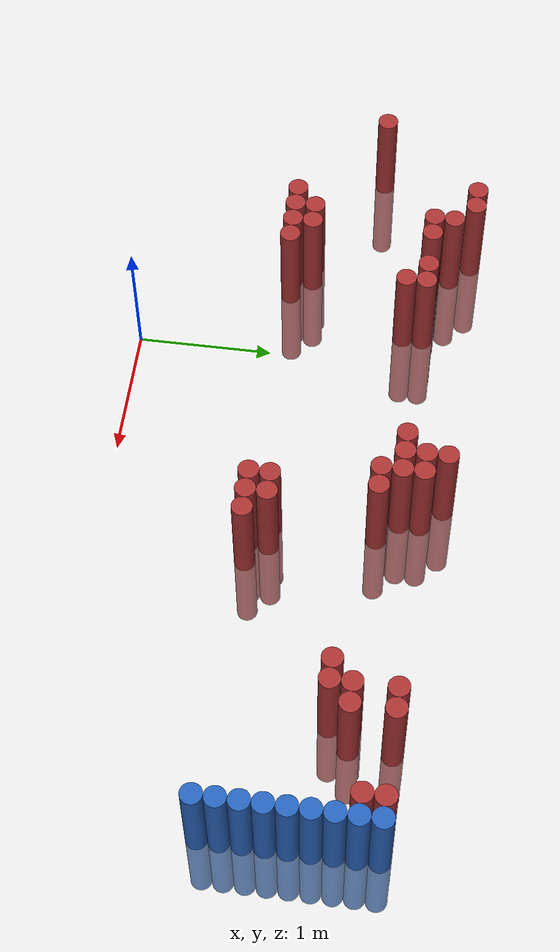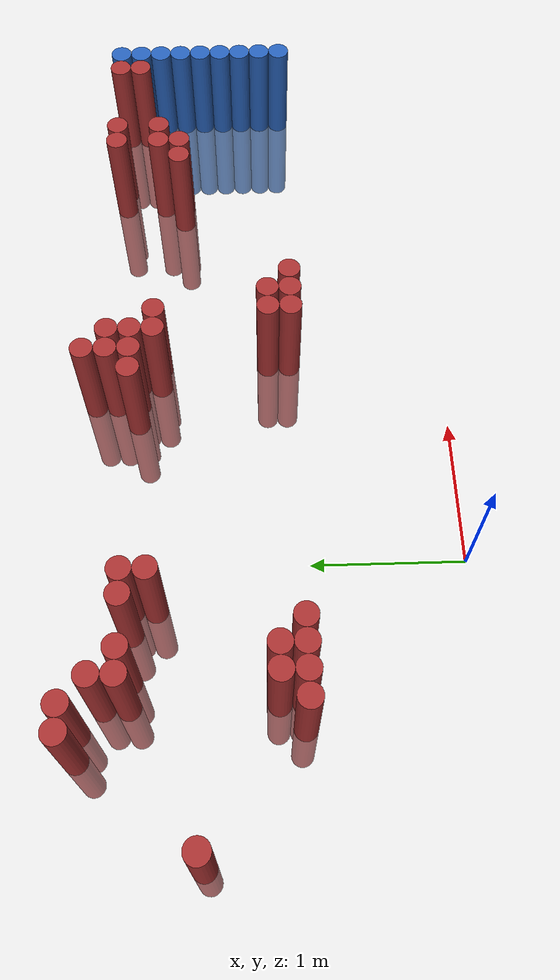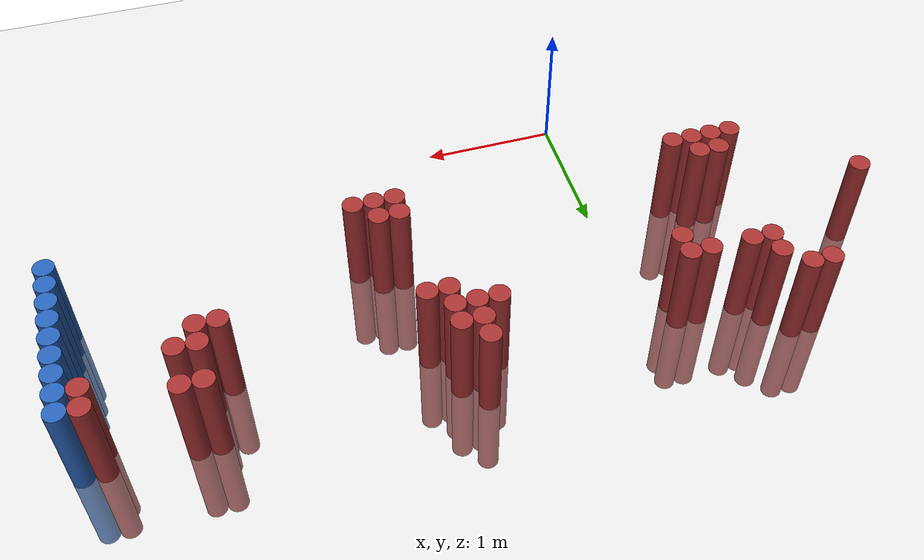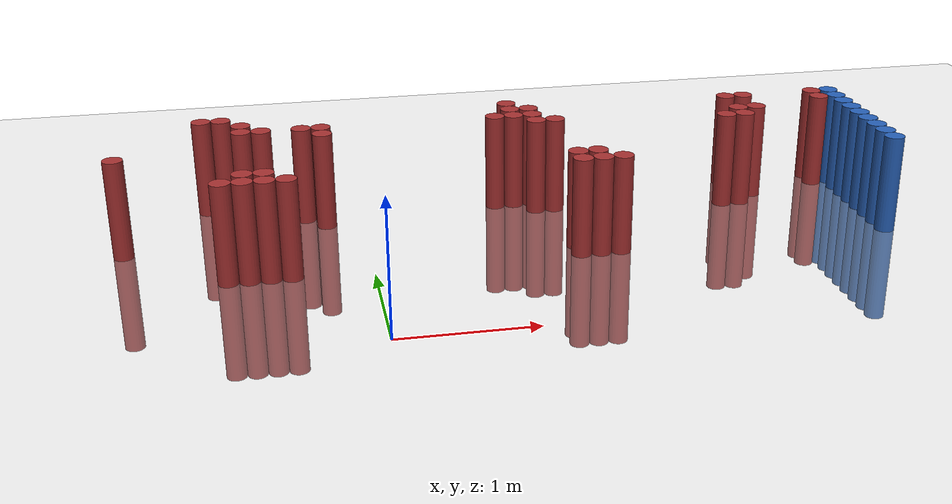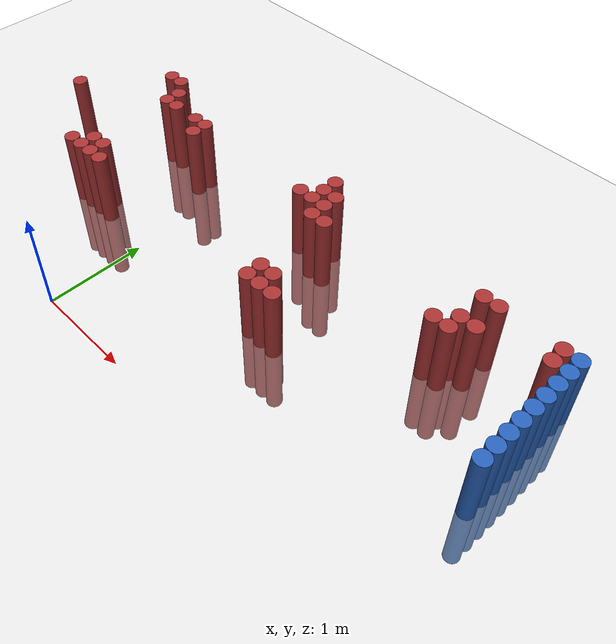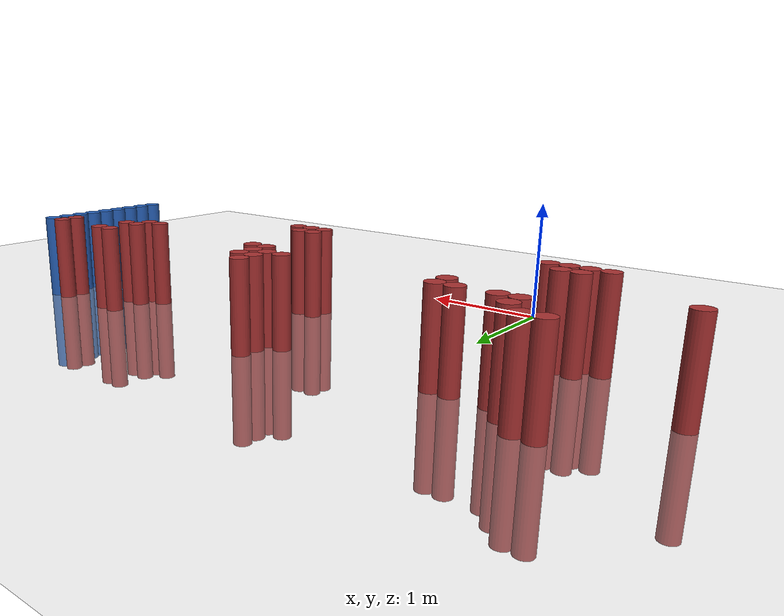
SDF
<sdf version="1.6">
 <world name="default">
  <model name="ground_plane">
   <static>1</static>
   <link name="link">
    <collision name="collision">
     <geometry><plane><normal>0 0 1</normal><size>100 100</size></plane></geometry>
     <surface><friction><ode><mu>100</mu><mu2>50</mu2></ode></friction></surface>
    </collision>
    <visual name="visual">
     <cast_shadows>0</cast_shadows>
     <geometry><plane><normal>0 0 1</normal><size>100 100</size></plane></geometry>
     <material>
      <script><uri>file://media/materials/scripts/gazebo.material</uri><name>Gazebo/Grey</name></script>
     </material>
    </visual>
   </link>
  </model>
  <model name="unit_cylinder_128">
   <static>1</static>
   <pose>3.925000 1.075000 0.000000 0.000000 0.000000 0.000000</pose>
   <link name="link">
    <inertial>
     <mass>1</mass>
     <inertia><ixx>0.145833</ixx><ixy>0</ixy><ixz>0</ixz><iyy>0.145833</iyy><iyz>0</iyz><izz>0.125</izz></inertia>
    </inertial>
    <collision name="collision">
     <geometry><cylinder><radius>0.075000</radius><length>1.5</length></cylinder></geometry>
    </collision>
    <visual name="visual">
     <geometry><cylinder><radius>0.075000</radius><length>1.5</length></cylinder></geometry>
     <material>
      <ambient>0.152000 0.379000 0.720000 1</ambient>
      <diffuse>0.152000 0.379000 0.720000 1</diffuse>
     </material>
     <material>
      <script><name>Gazebo/Grey</name><uri>file://media/materials/scripts/gazebo.material</uri></script>
     </material>
    </visual>
   </link>
  </model>
  <model name="unit_cylinder_130">
   <static>1</static>
   <pose>3.925000 1.225000 0.000000 0.000000 0.000000 0.000000</pose>
   <link name="link">
    <inertial>
     <mass>1</mass>
     <inertia><ixx>0.145833</ixx><ixy>0</ixy><ixz>0</ixz><iyy>0.145833</iyy><iyz>0</iyz><izz>0.125</izz></inertia>
    </inertial>
    <collision name="collision">
     <geometry><cylinder><radius>0.075000</radius><length>1.5</length></cylinder></geometry>
    </collision>
    <visual name="visual">
     <geometry><cylinder><radius>0.075000</radius><length>1.5</length></cylinder></geometry>
     <material>
      <ambient>0.152000 0.379000 0.720000 1</ambient>
      <diffuse>0.152000 0.379000 0.720000 1</diffuse>
     </material>
     <material>
      <script><name>Gazebo/Grey</name><uri>file://media/materials/scripts/gazebo.material</uri></script>
     </material>
    </visual>
   </link>
  </model>
  <model name="unit_cylinder_132">
   <static>1</static>
   <pose>3.925000 1.375000 0.000000 0.000000 0.000000 0.000000</pose>
   <link name="link">
    <inertial>
     <mass>1</mass>
     <inertia><ixx>0.145833</ixx><ixy>0</ixy><ixz>0</ixz><iyy>0.145833</iyy><iyz>0</iyz><izz>0.125</izz></inertia>
    </inertial>
    <collision name="collision">
     <geometry><cylinder><radius>0.075000</radius><length>1.5</length></cylinder></geometry>
    </collision>
    <visual name="visual">
     <geometry><cylinder><radius>0.075000</radius><length>1.5</length></cylinder></geometry>
     <material>
      <ambient>0.152000 0.379000 0.720000 1</ambient>
      <diffuse>0.152000 0.379000 0.720000 1</diffuse>
     </material>
     <material>
      <script><name>Gazebo/Grey</name><uri>file://media/materials/scripts/gazebo.material</uri></script>
     </material>
    </visual>
   </link>
  </model>
  <model name="unit_cylinder_134">
   <static>1</static>
   <pose>3.925000 1.525000 0.000000 0.000000 0.000000 0.000000</pose>
   <link name="link">
    <inertial>
     <mass>1</mass>
     <inertia><ixx>0.145833</ixx><ixy>0</ixy><ixz>0</ixz><iyy>0.145833</iyy><iyz>0</iyz><izz>0.125</izz></inertia>
    </inertial>
    <collision name="collision">
     <geometry><cylinder><radius>0.075000</radius><length>1.5</length></cylinder></geometry>
    </collision>
    <visual name="visual">
     <geometry><cylinder><radius>0.075000</radius><length>1.5</length></cylinder></geometry>
     <material>
      <ambient>0.152000 0.379000 0.720000 1</ambient>
      <diffuse>0.152000 0.379000 0.720000 1</diffuse>
     </material>
     <material>
      <script><name>Gazebo/Grey</name><uri>file://media/materials/scripts/gazebo.material</uri></script>
     </material>
    </visual>
   </link>
  </model>
  <model name="unit_cylinder_136">
   <static>1</static>
   <pose>3.925000 1.675000 0.000000 0.000000 0.000000 0.000000</pose>
   <link name="link">
    <inertial>
     <mass>1</mass>
     <inertia><ixx>0.145833</ixx><ixy>0</ixy><ixz>0</ixz><iyy>0.145833</iyy><iyz>0</iyz><izz>0.125</izz></inertia>
    </inertial>
    <collision name="collision">
     <geometry><cylinder><radius>0.075000</radius><length>1.5</length></cylinder></geometry>
    </collision>
    <visual name="visual">
     <geometry><cylinder><radius>0.075000</radius><length>1.5</length></cylinder></geometry>
     <material>
      <ambient>0.152000 0.379000 0.720000 1</ambient>
      <diffuse>0.152000 0.379000 0.720000 1</diffuse>
     </material>
     <material>
      <script><name>Gazebo/Grey</name><uri>file://media/materials/scripts/gazebo.material</uri></script>
     </material>
    </visual>
   </link>
  </model>
  <model name="unit_cylinder_138">
   <static>1</static>
   <pose>3.925000 1.825000 0.000000 0.000000 0.000000 0.000000</pose>
   <link name="link">
    <inertial>
     <mass>1</mass>
     <inertia><ixx>0.145833</ixx><ixy>0</ixy><ixz>0</ixz><iyy>0.145833</iyy><iyz>0</iyz><izz>0.125</izz></inertia>
    </inertial>
    <collision name="collision">
     <geometry><cylinder><radius>0.075000</radius><length>1.5</length></cylinder></geometry>
    </collision>
    <visual name="visual">
     <geometry><cylinder><radius>0.075000</radius><length>1.5</length></cylinder></geometry>
     <material>
      <ambient>0.152000 0.379000 0.720000 1</ambient>
      <diffuse>0.152000 0.379000 0.720000 1</diffuse>
     </material>
     <material>
      <script><name>Gazebo/Grey</name><uri>file://media/materials/scripts/gazebo.material</uri></script>
     </material>
    </visual>
   </link>
  </model>
  <model name="unit_cylinder_140">
   <static>1</static>
   <pose>3.925000 1.975000 0.000000 0.000000 0.000000 0.000000</pose>
   <link name="link">
    <inertial>
     <mass>1</mass>
     <inertia><ixx>0.145833</ixx><ixy>0</ixy><ixz>0</ixz><iyy>0.145833</iyy><iyz>0</iyz><izz>0.125</izz></inertia>
    </inertial>
    <collision name="collision">
     <geometry><cylinder><radius>0.075000</radius><length>1.5</length></cylinder></geometry>
    </collision>
    <visual name="visual">
     <geometry><cylinder><radius>0.075000</radius><length>1.5</length></cylinder></geometry>
     <material>
      <ambient>0.152000 0.379000 0.720000 1</ambient>
      <diffuse>0.152000 0.379000 0.720000 1</diffuse>
     </material>
     <material>
      <script><name>Gazebo/Grey</name><uri>file://media/materials/scripts/gazebo.material</uri></script>
     </material>
    </visual>
   </link>
  </model>
  <model name="unit_cylinder_142">
   <static>1</static>
   <pose>3.925000 2.125000 0.000000 0.000000 0.000000 0.000000</pose>
   <link name="link">
    <inertial>
     <mass>1</mass>
     <inertia><ixx>0.145833</ixx><ixy>0</ixy><ixz>0</ixz><iyy>0.145833</iyy><iyz>0</iyz><izz>0.125</izz></inertia>
    </inertial>
    <collision name="collision">
     <geometry><cylinder><radius>0.075000</radius><length>1.5</length></cylinder></geometry>
    </collision>
    <visual name="visual">
     <geometry><cylinder><radius>0.075000</radius><length>1.5</length></cylinder></geometry>
     <material>
      <ambient>0.152000 0.379000 0.720000 1</ambient>
      <diffuse>0.152000 0.379000 0.720000 1</diffuse>
     </material>
     <material>
      <script><name>Gazebo/Grey</name><uri>file://media/materials/scripts/gazebo.material</uri></script>
     </material>
    </visual>
   </link>
  </model>
  <model name="unit_cylinder_144">
   <static>1</static>
   <pose>3.925000 2.275000 0.000000 0.000000 0.000000 0.000000</pose>
   <link name="link">
    <inertial>
     <mass>1</mass>
     <inertia><ixx>0.145833</ixx><ixy>0</ixy><ixz>0</ixz><iyy>0.145833</iyy><iyz>0</iyz><izz>0.125</izz></inertia>
    </inertial>
    <collision name="collision">
     <geometry><cylinder><radius>0.075000</radius><length>1.5</length></cylinder></geometry>
    </collision>
    <visual name="visual">
     <geometry><cylinder><radius>0.075000</radius><length>1.5</length></cylinder></geometry>
     <material>
      <ambient>0.152000 0.379000 0.720000 1</ambient>
      <diffuse>0.152000 0.379000 0.720000 1</diffuse>
     </material>
     <material>
      <script><name>Gazebo/Grey</name><uri>file://media/materials/scripts/gazebo.material</uri></script>
     </material>
    </visual>
   </link>
  </model>
  <model name="unit_cylinder_323">
   <static>1</static>
   <pose>-1.775000 1.675000 0.000000 0.000000 0.000000 0.000000</pose>
   <link name="link">
    <inertial>
     <mass>1</mass>
     <inertia><ixx>0.145833</ixx><ixy>0</ixy><ixz>0</ixz><iyy>0.145833</iyy><iyz>0</iyz><izz>0.125</izz></inertia>
    </inertial>
    <collision name="collision">
     <geometry><cylinder><radius>0.075000</radius><length>1.5</length></cylinder></geometry>
    </collision>
    <visual name="visual">
     <geometry><cylinder><radius>0.075000</radius><length>1.5</length></cylinder></geometry>
     <material>
      <ambient>0.648000 0.192000 0.192000 1</ambient>
      <diffuse>0.648000 0.192000 0.192000 1</diffuse>
     </material>
     <material>
      <script><name>Gazebo/Grey</name><uri>file://media/materials/scripts/gazebo.material</uri></script>
     </material>
    </visual>
   </link>
  </model>
  <model name="unit_cylinder_337">
   <static>1</static>
   <pose>-1.175000 2.425000 0.000000 0.000000 0.000000 0.000000</pose>
   <link name="link">
    <inertial>
     <mass>1</mass>
     <inertia><ixx>0.145833</ixx><ixy>0</ixy><ixz>0</ixz><iyy>0.145833</iyy><iyz>0</iyz><izz>0.125</izz></inertia>
    </inertial>
    <collision name="collision">
     <geometry><cylinder><radius>0.075000</radius><length>1.5</length></cylinder></geometry>
    </collision>
    <visual name="visual">
     <geometry><cylinder><radius>0.075000</radius><length>1.5</length></cylinder></geometry>
     <material>
      <ambient>0.648000 0.192000 0.192000 1</ambient>
      <diffuse>0.648000 0.192000 0.192000 1</diffuse>
     </material>
     <material>
      <script><name>Gazebo/Grey</name><uri>file://media/materials/scripts/gazebo.material</uri></script>
     </material>
    </visual>
   </link>
  </model>
  <model name="unit_cylinder_348">
   <static>1</static>
   <pose>-1.025000 1.075000 0.000000 0.000000 0.000000 0.000000</pose>
   <link name="link">
    <inertial>
     <mass>1</mass>
     <inertia><ixx>0.145833</ixx><ixy>0</ixy><ixz>0</ixz><iyy>0.145833</iyy><iyz>0</iyz><izz>0.125</izz></inertia>
    </inertial>
    <collision name="collision">
     <geometry><cylinder><radius>0.075000</radius><length>1.5</length></cylinder></geometry>
    </collision>
    <visual name="visual">
     <geometry><cylinder><radius>0.075000</radius><length>1.5</length></cylinder></geometry>
     <material>
      <ambient>0.648000 0.192000 0.192000 1</ambient>
      <diffuse>0.648000 0.192000 0.192000 1</diffuse>
     </material>
     <material>
      <script><name>Gazebo/Grey</name><uri>file://media/materials/scripts/gazebo.material</uri></script>
     </material>
    </visual>
   </link>
  </model>
  <model name="unit_cylinder_349">
   <static>1</static>
   <pose>-1.025000 2.425000 0.000000 0.000000 0.000000 0.000000</pose>
   <link name="link">
    <inertial>
     <mass>1</mass>
     <inertia><ixx>0.145833</ixx><ixy>0</ixy><ixz>0</ixz><iyy>0.145833</iyy><iyz>0</iyz><izz>0.125</izz></inertia>
    </inertial>
    <collision name="collision">
     <geometry><cylinder><radius>0.075000</radius><length>1.5</length></cylinder></geometry>
    </collision>
    <visual name="visual">
     <geometry><cylinder><radius>0.075000</radius><length>1.5</length></cylinder></geometry>
     <material>
      <ambient>0.648000 0.192000 0.192000 1</ambient>
      <diffuse>0.648000 0.192000 0.192000 1</diffuse>
     </material>
     <material>
      <script><name>Gazebo/Grey</name><uri>file://media/materials/scripts/gazebo.material</uri></script>
     </material>
    </visual>
   </link>
  </model>
  <model name="unit_cylinder_362">
   <static>1</static>
   <pose>-0.875000 1.075000 0.000000 0.000000 0.000000 0.000000</pose>
   <link name="link">
    <inertial>
     <mass>1</mass>
     <inertia><ixx>0.145833</ixx><ixy>0</ixy><ixz>0</ixz><iyy>0.145833</iyy><iyz>0</iyz><izz>0.125</izz></inertia>
    </inertial>
    <collision name="collision">
     <geometry><cylinder><radius>0.075000</radius><length>1.5</length></cylinder></geometry>
    </collision>
    <visual name="visual">
     <geometry><cylinder><radius>0.075000</radius><length>1.5</length></cylinder></geometry>
     <material>
      <ambient>0.648000 0.192000 0.192000 1</ambient>
      <diffuse>0.648000 0.192000 0.192000 1</diffuse>
     </material>
     <material>
      <script><name>Gazebo/Grey</name><uri>file://media/materials/scripts/gazebo.material</uri></script>
     </material>
    </visual>
   </link>
  </model>
  <model name="unit_cylinder_363">
   <static>1</static>
   <pose>-0.875000 1.225000 0.000000 0.000000 0.000000 0.000000</pose>
   <link name="link">
    <inertial>
     <mass>1</mass>
     <inertia><ixx>0.145833</ixx><ixy>0</ixy><ixz>0</ixz><iyy>0.145833</iyy><iyz>0</iyz><izz>0.125</izz></inertia>
    </inertial>
    <collision name="collision">
     <geometry><cylinder><radius>0.075000</radius><length>1.5</length></cylinder></geometry>
    </collision>
    <visual name="visual">
     <geometry><cylinder><radius>0.075000</radius><length>1.5</length></cylinder></geometry>
     <material>
      <ambient>0.648000 0.192000 0.192000 1</ambient>
      <diffuse>0.648000 0.192000 0.192000 1</diffuse>
     </material>
     <material>
      <script><name>Gazebo/Grey</name><uri>file://media/materials/scripts/gazebo.material</uri></script>
     </material>
    </visual>
   </link>
  </model>
  <model name="unit_cylinder_364">
   <static>1</static>
   <pose>-0.875000 2.125000 0.000000 0.000000 0.000000 0.000000</pose>
   <link name="link">
    <inertial>
     <mass>1</mass>
     <inertia><ixx>0.145833</ixx><ixy>0</ixy><ixz>0</ixz><iyy>0.145833</iyy><iyz>0</iyz><izz>0.125</izz></inertia>
    </inertial>
    <collision name="collision">
     <geometry><cylinder><radius>0.075000</radius><length>1.5</length></cylinder></geometry>
    </collision>
    <visual name="visual">
     <geometry><cylinder><radius>0.075000</radius><length>1.5</length></cylinder></geometry>
     <material>
      <ambient>0.648000 0.192000 0.192000 1</ambient>
      <diffuse>0.648000 0.192000 0.192000 1</diffuse>
     </material>
     <material>
      <script><name>Gazebo/Grey</name><uri>file://media/materials/scripts/gazebo.material</uri></script>
     </material>
    </visual>
   </link>
  </model>
  <model name="unit_cylinder_365">
   <static>1</static>
   <pose>-0.875000 2.275000 0.000000 0.000000 0.000000 0.000000</pose>
   <link name="link">
    <inertial>
     <mass>1</mass>
     <inertia><ixx>0.145833</ixx><ixy>0</ixy><ixz>0</ixz><iyy>0.145833</iyy><iyz>0</iyz><izz>0.125</izz></inertia>
    </inertial>
    <collision name="collision">
     <geometry><cylinder><radius>0.075000</radius><length>1.5</length></cylinder></geometry>
    </collision>
    <visual name="visual">
     <geometry><cylinder><radius>0.075000</radius><length>1.5</length></cylinder></geometry>
     <material>
      <ambient>0.648000 0.192000 0.192000 1</ambient>
      <diffuse>0.648000 0.192000 0.192000 1</diffuse>
     </material>
     <material>
      <script><name>Gazebo/Grey</name><uri>file://media/materials/scripts/gazebo.material</uri></script>
     </material>
    </visual>
   </link>
  </model>
  <model name="unit_cylinder_372">
   <static>1</static>
   <pose>-0.725000 1.075000 0.000000 0.000000 0.000000 0.000000</pose>
   <link name="link">
    <inertial>
     <mass>1</mass>
     <inertia><ixx>0.145833</ixx><ixy>0</ixy><ixz>0</ixz><iyy>0.145833</iyy><iyz>0</iyz><izz>0.125</izz></inertia>
    </inertial>
    <collision name="collision">
     <geometry><cylinder><radius>0.075000</radius><length>1.5</length></cylinder></geometry>
    </collision>
    <visual name="visual">
     <geometry><cylinder><radius>0.075000</radius><length>1.5</length></cylinder></geometry>
     <material>
      <ambient>0.648000 0.192000 0.192000 1</ambient>
      <diffuse>0.648000 0.192000 0.192000 1</diffuse>
     </material>
     <material>
      <script><name>Gazebo/Grey</name><uri>file://media/materials/scripts/gazebo.material</uri></script>
     </material>
    </visual>
   </link>
  </model>
  <model name="unit_cylinder_373">
   <static>1</static>
   <pose>-0.725000 1.225000 0.000000 0.000000 0.000000 0.000000</pose>
   <link name="link">
    <inertial>
     <mass>1</mass>
     <inertia><ixx>0.145833</ixx><ixy>0</ixy><ixz>0</ixz><iyy>0.145833</iyy><iyz>0</iyz><izz>0.125</izz></inertia>
    </inertial>
    <collision name="collision">
     <geometry><cylinder><radius>0.075000</radius><length>1.5</length></cylinder></geometry>
    </collision>
    <visual name="visual">
     <geometry><cylinder><radius>0.075000</radius><length>1.5</length></cylinder></geometry>
     <material>
      <ambient>0.648000 0.192000 0.192000 1</ambient>
      <diffuse>0.648000 0.192000 0.192000 1</diffuse>
     </material>
     <material>
      <script><name>Gazebo/Grey</name><uri>file://media/materials/scripts/gazebo.material</uri></script>
     </material>
    </visual>
   </link>
  </model>
  <model name="unit_cylinder_374">
   <static>1</static>
   <pose>-0.725000 2.125000 0.000000 0.000000 0.000000 0.000000</pose>
   <link name="link">
    <inertial>
     <mass>1</mass>
     <inertia><ixx>0.145833</ixx><ixy>0</ixy><ixz>0</ixz><iyy>0.145833</iyy><iyz>0</iyz><izz>0.125</izz></inertia>
    </inertial>
    <collision name="collision">
     <geometry><cylinder><radius>0.075000</radius><length>1.5</length></cylinder></geometry>
    </collision>
    <visual name="visual">
     <geometry><cylinder><radius>0.075000</radius><length>1.5</length></cylinder></geometry>
     <material>
      <ambient>0.648000 0.192000 0.192000 1</ambient>
      <diffuse>0.648000 0.192000 0.192000 1</diffuse>
     </material>
     <material>
      <script><name>Gazebo/Grey</name><uri>file://media/materials/scripts/gazebo.material</uri></script>
     </material>
    </visual>
   </link>
  </model>
  <model name="unit_cylinder_379">
   <static>1</static>
   <pose>-0.575000 1.075000 0.000000 0.000000 0.000000 0.000000</pose>
   <link name="link">
    <inertial>
     <mass>1</mass>
     <inertia><ixx>0.145833</ixx><ixy>0</ixy><ixz>0</ixz><iyy>0.145833</iyy><iyz>0</iyz><izz>0.125</izz></inertia>
    </inertial>
    <collision name="collision">
     <geometry><cylinder><radius>0.075000</radius><length>1.5</length></cylinder></geometry>
    </collision>
    <visual name="visual">
     <geometry><cylinder><radius>0.075000</radius><length>1.5</length></cylinder></geometry>
     <material>
      <ambient>0.648000 0.192000 0.192000 1</ambient>
      <diffuse>0.648000 0.192000 0.192000 1</diffuse>
     </material>
     <material>
      <script><name>Gazebo/Grey</name><uri>file://media/materials/scripts/gazebo.material</uri></script>
     </material>
    </visual>
   </link>
  </model>
  <model name="unit_cylinder_385">
   <static>1</static>
   <pose>-0.425000 2.125000 0.000000 0.000000 0.000000 0.000000</pose>
   <link name="link">
    <inertial>
     <mass>1</mass>
     <inertia><ixx>0.145833</ixx><ixy>0</ixy><ixz>0</ixz><iyy>0.145833</iyy><iyz>0</iyz><izz>0.125</izz></inertia>
    </inertial>
    <collision name="collision">
     <geometry><cylinder><radius>0.075000</radius><length>1.5</length></cylinder></geometry>
    </collision>
    <visual name="visual">
     <geometry><cylinder><radius>0.075000</radius><length>1.5</length></cylinder></geometry>
     <material>
      <ambient>0.648000 0.192000 0.192000 1</ambient>
      <diffuse>0.648000 0.192000 0.192000 1</diffuse>
     </material>
     <material>
      <script><name>Gazebo/Grey</name><uri>file://media/materials/scripts/gazebo.material</uri></script>
     </material>
    </visual>
   </link>
  </model>
  <model name="unit_cylinder_389">
   <static>1</static>
   <pose>-0.275000 1.975000 0.000000 0.000000 0.000000 0.000000</pose>
   <link name="link">
    <inertial>
     <mass>1</mass>
     <inertia><ixx>0.145833</ixx><ixy>0</ixy><ixz>0</ixz><iyy>0.145833</iyy><iyz>0</iyz><izz>0.125</izz></inertia>
    </inertial>
    <collision name="collision">
     <geometry><cylinder><radius>0.075000</radius><length>1.5</length></cylinder></geometry>
    </collision>
    <visual name="visual">
     <geometry><cylinder><radius>0.075000</radius><length>1.5</length></cylinder></geometry>
     <material>
      <ambient>0.648000 0.192000 0.192000 1</ambient>
      <diffuse>0.648000 0.192000 0.192000 1</diffuse>
     </material>
     <material>
      <script><name>Gazebo/Grey</name><uri>file://media/materials/scripts/gazebo.material</uri></script>
     </material>
    </visual>
   </link>
  </model>
  <model name="unit_cylinder_390">
   <static>1</static>
   <pose>-0.275000 2.125000 0.000000 0.000000 0.000000 0.000000</pose>
   <link name="link">
    <inertial>
     <mass>1</mass>
     <inertia><ixx>0.145833</ixx><ixy>0</ixy><ixz>0</ixz><iyy>0.145833</iyy><iyz>0</iyz><izz>0.125</izz></inertia>
    </inertial>
    <collision name="collision">
     <geometry><cylinder><radius>0.075000</radius><length>1.5</length></cylinder></geometry>
    </collision>
    <visual name="visual">
     <geometry><cylinder><radius>0.075000</radius><length>1.5</length></cylinder></geometry>
     <material>
      <ambient>0.648000 0.192000 0.192000 1</ambient>
      <diffuse>0.648000 0.192000 0.192000 1</diffuse>
     </material>
     <material>
      <script><name>Gazebo/Grey</name><uri>file://media/materials/scripts/gazebo.material</uri></script>
     </material>
    </visual>
   </link>
  </model>
  <model name="unit_cylinder_401">
   <static>1</static>
   <pose>1.075000 2.125000 0.000000 0.000000 0.000000 0.000000</pose>
   <link name="link">
    <inertial>
     <mass>1</mass>
     <inertia><ixx>0.145833</ixx><ixy>0</ixy><ixz>0</ixz><iyy>0.145833</iyy><iyz>0</iyz><izz>0.125</izz></inertia>
    </inertial>
    <collision name="collision">
     <geometry><cylinder><radius>0.075000</radius><length>1.5</length></cylinder></geometry>
    </collision>
    <visual name="visual">
     <geometry><cylinder><radius>0.075000</radius><length>1.5</length></cylinder></geometry>
     <material>
      <ambient>0.648000 0.192000 0.192000 1</ambient>
      <diffuse>0.648000 0.192000 0.192000 1</diffuse>
     </material>
     <material>
      <script><name>Gazebo/Grey</name><uri>file://media/materials/scripts/gazebo.material</uri></script>
     </material>
    </visual>
   </link>
  </model>
  <model name="unit_cylinder_405">
   <static>1</static>
   <pose>1.225000 2.125000 0.000000 0.000000 0.000000 0.000000</pose>
   <link name="link">
    <inertial>
     <mass>1</mass>
     <inertia><ixx>0.145833</ixx><ixy>0</ixy><ixz>0</ixz><iyy>0.145833</iyy><iyz>0</iyz><izz>0.125</izz></inertia>
    </inertial>
    <collision name="collision">
     <geometry><cylinder><radius>0.075000</radius><length>1.5</length></cylinder></geometry>
    </collision>
    <visual name="visual">
     <geometry><cylinder><radius>0.075000</radius><length>1.5</length></cylinder></geometry>
     <material>
      <ambient>0.648000 0.192000 0.192000 1</ambient>
      <diffuse>0.648000 0.192000 0.192000 1</diffuse>
     </material>
     <material>
      <script><name>Gazebo/Grey</name><uri>file://media/materials/scripts/gazebo.material</uri></script>
     </material>
    </visual>
   </link>
  </model>
  <model name="unit_cylinder_406">
   <static>1</static>
   <pose>1.225000 2.275000 0.000000 0.000000 0.000000 0.000000</pose>
   <link name="link">
    <inertial>
     <mass>1</mass>
     <inertia><ixx>0.145833</ixx><ixy>0</ixy><ixz>0</ixz><iyy>0.145833</iyy><iyz>0</iyz><izz>0.125</izz></inertia>
    </inertial>
    <collision name="collision">
     <geometry><cylinder><radius>0.075000</radius><length>1.5</length></cylinder></geometry>
    </collision>
    <visual name="visual">
     <geometry><cylinder><radius>0.075000</radius><length>1.5</length></cylinder></geometry>
     <material>
      <ambient>0.648000 0.192000 0.192000 1</ambient>
      <diffuse>0.648000 0.192000 0.192000 1</diffuse>
     </material>
     <material>
      <script><name>Gazebo/Grey</name><uri>file://media/materials/scripts/gazebo.material</uri></script>
     </material>
    </visual>
   </link>
  </model>
  <model name="unit_cylinder_407">
   <static>1</static>
   <pose>1.225000 2.425000 0.000000 0.000000 0.000000 0.000000</pose>
   <link name="link">
    <inertial>
     <mass>1</mass>
     <inertia><ixx>0.145833</ixx><ixy>0</ixy><ixz>0</ixz><iyy>0.145833</iyy><iyz>0</iyz><izz>0.125</izz></inertia>
    </inertial>
    <collision name="collision">
     <geometry><cylinder><radius>0.075000</radius><length>1.5</length></cylinder></geometry>
    </collision>
    <visual name="visual">
     <geometry><cylinder><radius>0.075000</radius><length>1.5</length></cylinder></geometry>
     <material>
      <ambient>0.648000 0.192000 0.192000 1</ambient>
      <diffuse>0.648000 0.192000 0.192000 1</diffuse>
     </material>
     <material>
      <script><name>Gazebo/Grey</name><uri>file://media/materials/scripts/gazebo.material</uri></script>
     </material>
    </visual>
   </link>
  </model>
  <model name="unit_cylinder_413">
   <static>1</static>
   <pose>1.375000 1.975000 0.000000 0.000000 0.000000 0.000000</pose>
   <link name="link">
    <inertial>
     <mass>1</mass>
     <inertia><ixx>0.145833</ixx><ixy>0</ixy><ixz>0</ixz><iyy>0.145833</iyy><iyz>0</iyz><izz>0.125</izz></inertia>
    </inertial>
    <collision name="collision">
     <geometry><cylinder><radius>0.075000</radius><length>1.5</length></cylinder></geometry>
    </collision>
    <visual name="visual">
     <geometry><cylinder><radius>0.075000</radius><length>1.5</length></cylinder></geometry>
     <material>
      <ambient>0.648000 0.192000 0.192000 1</ambient>
      <diffuse>0.648000 0.192000 0.192000 1</diffuse>
     </material>
     <material>
      <script><name>Gazebo/Grey</name><uri>file://media/materials/scripts/gazebo.material</uri></script>
     </material>
    </visual>
   </link>
  </model>
  <model name="unit_cylinder_414">
   <static>1</static>
   <pose>1.375000 2.125000 0.000000 0.000000 0.000000 0.000000</pose>
   <link name="link">
    <inertial>
     <mass>1</mass>
     <inertia><ixx>0.145833</ixx><ixy>0</ixy><ixz>0</ixz><iyy>0.145833</iyy><iyz>0</iyz><izz>0.125</izz></inertia>
    </inertial>
    <collision name="collision">
     <geometry><cylinder><radius>0.075000</radius><length>1.5</length></cylinder></geometry>
    </collision>
    <visual name="visual">
     <geometry><cylinder><radius>0.075000</radius><length>1.5</length></cylinder></geometry>
     <material>
      <ambient>0.648000 0.192000 0.192000 1</ambient>
      <diffuse>0.648000 0.192000 0.192000 1</diffuse>
     </material>
     <material>
      <script><name>Gazebo/Grey</name><uri>file://media/materials/scripts/gazebo.material</uri></script>
     </material>
    </visual>
   </link>
  </model>
  <model name="unit_cylinder_415">
   <static>1</static>
   <pose>1.375000 2.275000 0.000000 0.000000 0.000000 0.000000</pose>
   <link name="link">
    <inertial>
     <mass>1</mass>
     <inertia><ixx>0.145833</ixx><ixy>0</ixy><ixz>0</ixz><iyy>0.145833</iyy><iyz>0</iyz><izz>0.125</izz></inertia>
    </inertial>
    <collision name="collision">
     <geometry><cylinder><radius>0.075000</radius><length>1.5</length></cylinder></geometry>
    </collision>
    <visual name="visual">
     <geometry><cylinder><radius>0.075000</radius><length>1.5</length></cylinder></geometry>
     <material>
      <ambient>0.648000 0.192000 0.192000 1</ambient>
      <diffuse>0.648000 0.192000 0.192000 1</diffuse>
     </material>
     <material>
      <script><name>Gazebo/Grey</name><uri>file://media/materials/scripts/gazebo.material</uri></script>
     </material>
    </visual>
   </link>
  </model>
  <model name="unit_cylinder_418">
   <static>1</static>
   <pose>1.525000 1.075000 0.000000 0.000000 0.000000 0.000000</pose>
   <link name="link">
    <inertial>
     <mass>1</mass>
     <inertia><ixx>0.145833</ixx><ixy>0</ixy><ixz>0</ixz><iyy>0.145833</iyy><iyz>0</iyz><izz>0.125</izz></inertia>
    </inertial>
    <collision name="collision">
     <geometry><cylinder><radius>0.075000</radius><length>1.5</length></cylinder></geometry>
    </collision>
    <visual name="visual">
     <geometry><cylinder><radius>0.075000</radius><length>1.5</length></cylinder></geometry>
     <material>
      <ambient>0.648000 0.192000 0.192000 1</ambient>
      <diffuse>0.648000 0.192000 0.192000 1</diffuse>
     </material>
     <material>
      <script><name>Gazebo/Grey</name><uri>file://media/materials/scripts/gazebo.material</uri></script>
     </material>
    </visual>
   </link>
  </model>
  <model name="unit_cylinder_419">
   <static>1</static>
   <pose>1.525000 1.225000 0.000000 0.000000 0.000000 0.000000</pose>
   <link name="link">
    <inertial>
     <mass>1</mass>
     <inertia><ixx>0.145833</ixx><ixy>0</ixy><ixz>0</ixz><iyy>0.145833</iyy><iyz>0</iyz><izz>0.125</izz></inertia>
    </inertial>
    <collision name="collision">
     <geometry><cylinder><radius>0.075000</radius><length>1.5</length></cylinder></geometry>
    </collision>
    <visual name="visual">
     <geometry><cylinder><radius>0.075000</radius><length>1.5</length></cylinder></geometry>
     <material>
      <ambient>0.648000 0.192000 0.192000 1</ambient>
      <diffuse>0.648000 0.192000 0.192000 1</diffuse>
     </material>
     <material>
      <script><name>Gazebo/Grey</name><uri>file://media/materials/scripts/gazebo.material</uri></script>
     </material>
    </visual>
   </link>
  </model>
  <model name="unit_cylinder_420">
   <static>1</static>
   <pose>1.525000 1.975000 0.000000 0.000000 0.000000 0.000000</pose>
   <link name="link">
    <inertial>
     <mass>1</mass>
     <inertia><ixx>0.145833</ixx><ixy>0</ixy><ixz>0</ixz><iyy>0.145833</iyy><iyz>0</iyz><izz>0.125</izz></inertia>
    </inertial>
    <collision name="collision">
     <geometry><cylinder><radius>0.075000</radius><length>1.5</length></cylinder></geometry>
    </collision>
    <visual name="visual">
     <geometry><cylinder><radius>0.075000</radius><length>1.5</length></cylinder></geometry>
     <material>
      <ambient>0.648000 0.192000 0.192000 1</ambient>
      <diffuse>0.648000 0.192000 0.192000 1</diffuse>
     </material>
     <material>
      <script><name>Gazebo/Grey</name><uri>file://media/materials/scripts/gazebo.material</uri></script>
     </material>
    </visual>
   </link>
  </model>
  <model name="unit_cylinder_422">
   <static>1</static>
   <pose>1.675000 1.075000 0.000000 0.000000 0.000000 0.000000</pose>
   <link name="link">
    <inertial>
     <mass>1</mass>
     <inertia><ixx>0.145833</ixx><ixy>0</ixy><ixz>0</ixz><iyy>0.145833</iyy><iyz>0</iyz><izz>0.125</izz></inertia>
    </inertial>
    <collision name="collision">
     <geometry><cylinder><radius>0.075000</radius><length>1.5</length></cylinder></geometry>
    </collision>
    <visual name="visual">
     <geometry><cylinder><radius>0.075000</radius><length>1.5</length></cylinder></geometry>
     <material>
      <ambient>0.648000 0.192000 0.192000 1</ambient>
      <diffuse>0.648000 0.192000 0.192000 1</diffuse>
     </material>
     <material>
      <script><name>Gazebo/Grey</name><uri>file://media/materials/scripts/gazebo.material</uri></script>
     </material>
    </visual>
   </link>
  </model>
  <model name="unit_cylinder_423">
   <static>1</static>
   <pose>1.675000 1.225000 0.000000 0.000000 0.000000 0.000000</pose>
   <link name="link">
    <inertial>
     <mass>1</mass>
     <inertia><ixx>0.145833</ixx><ixy>0</ixy><ixz>0</ixz><iyy>0.145833</iyy><iyz>0</iyz><izz>0.125</izz></inertia>
    </inertial>
    <collision name="collision">
     <geometry><cylinder><radius>0.075000</radius><length>1.5</length></cylinder></geometry>
    </collision>
    <visual name="visual">
     <geometry><cylinder><radius>0.075000</radius><length>1.5</length></cylinder></geometry>
     <material>
      <ambient>0.648000 0.192000 0.192000 1</ambient>
      <diffuse>0.648000 0.192000 0.192000 1</diffuse>
     </material>
     <material>
      <script><name>Gazebo/Grey</name><uri>file://media/materials/scripts/gazebo.material</uri></script>
     </material>
    </visual>
   </link>
  </model>
  <model name="unit_cylinder_425">
   <static>1</static>
   <pose>1.825000 1.075000 0.000000 0.000000 0.000000 0.000000</pose>
   <link name="link">
    <inertial>
     <mass>1</mass>
     <inertia><ixx>0.145833</ixx><ixy>0</ixy><ixz>0</ixz><iyy>0.145833</iyy><iyz>0</iyz><izz>0.125</izz></inertia>
    </inertial>
    <collision name="collision">
     <geometry><cylinder><radius>0.075000</radius><length>1.5</length></cylinder></geometry>
    </collision>
    <visual name="visual">
     <geometry><cylinder><radius>0.075000</radius><length>1.5</length></cylinder></geometry>
     <material>
      <ambient>0.648000 0.192000 0.192000 1</ambient>
      <diffuse>0.648000 0.192000 0.192000 1</diffuse>
     </material>
     <material>
      <script><name>Gazebo/Grey</name><uri>file://media/materials/scripts/gazebo.material</uri></script>
     </material>
    </visual>
   </link>
  </model>
  <model name="unit_cylinder_440">
   <static>1</static>
   <pose>2.875000 1.825000 0.000000 0.000000 0.000000 0.000000</pose>
   <link name="link">
    <inertial>
     <mass>1</mass>
     <inertia><ixx>0.145833</ixx><ixy>0</ixy><ixz>0</ixz><iyy>0.145833</iyy><iyz>0</iyz><izz>0.125</izz></inertia>
    </inertial>
    <collision name="collision">
     <geometry><cylinder><radius>0.075000</radius><length>1.5</length></cylinder></geometry>
    </collision>
    <visual name="visual">
     <geometry><cylinder><radius>0.075000</radius><length>1.5</length></cylinder></geometry>
     <material>
      <ambient>0.648000 0.192000 0.192000 1</ambient>
      <diffuse>0.648000 0.192000 0.192000 1</diffuse>
     </material>
     <material>
      <script><name>Gazebo/Grey</name><uri>file://media/materials/scripts/gazebo.material</uri></script>
     </material>
    </visual>
   </link>
  </model>
  <model name="unit_cylinder_444">
   <static>1</static>
   <pose>3.025000 1.825000 0.000000 0.000000 0.000000 0.000000</pose>
   <link name="link">
    <inertial>
     <mass>1</mass>
     <inertia><ixx>0.145833</ixx><ixy>0</ixy><ixz>0</ixz><iyy>0.145833</iyy><iyz>0</iyz><izz>0.125</izz></inertia>
    </inertial>
    <collision name="collision">
     <geometry><cylinder><radius>0.075000</radius><length>1.5</length></cylinder></geometry>
    </collision>
    <visual name="visual">
     <geometry><cylinder><radius>0.075000</radius><length>1.5</length></cylinder></geometry>
     <material>
      <ambient>0.648000 0.192000 0.192000 1</ambient>
      <diffuse>0.648000 0.192000 0.192000 1</diffuse>
     </material>
     <material>
      <script><name>Gazebo/Grey</name><uri>file://media/materials/scripts/gazebo.material</uri></script>
     </material>
    </visual>
   </link>
  </model>
  <model name="unit_cylinder_445">
   <static>1</static>
   <pose>3.025000 1.975000 0.000000 0.000000 0.000000 0.000000</pose>
   <link name="link">
    <inertial>
     <mass>1</mass>
     <inertia><ixx>0.145833</ixx><ixy>0</ixy><ixz>0</ixz><iyy>0.145833</iyy><iyz>0</iyz><izz>0.125</izz></inertia>
    </inertial>
    <collision name="collision">
     <geometry><cylinder><radius>0.075000</radius><length>1.5</length></cylinder></geometry>
    </collision>
    <visual name="visual">
     <geometry><cylinder><radius>0.075000</radius><length>1.5</length></cylinder></geometry>
     <material>
      <ambient>0.648000 0.192000 0.192000 1</ambient>
      <diffuse>0.648000 0.192000 0.192000 1</diffuse>
     </material>
     <material>
      <script><name>Gazebo/Grey</name><uri>file://media/materials/scripts/gazebo.material</uri></script>
     </material>
    </visual>
   </link>
  </model>
  <model name="unit_cylinder_446">
   <static>1</static>
   <pose>3.025000 2.275000 0.000000 0.000000 0.000000 0.000000</pose>
   <link name="link">
    <inertial>
     <mass>1</mass>
     <inertia><ixx>0.145833</ixx><ixy>0</ixy><ixz>0</ixz><iyy>0.145833</iyy><iyz>0</iyz><izz>0.125</izz></inertia>
    </inertial>
    <collision name="collision">
     <geometry><cylinder><radius>0.075000</radius><length>1.5</length></cylinder></geometry>
    </collision>
    <visual name="visual">
     <geometry><cylinder><radius>0.075000</radius><length>1.5</length></cylinder></geometry>
     <material>
      <ambient>0.648000 0.192000 0.192000 1</ambient>
      <diffuse>0.648000 0.192000 0.192000 1</diffuse>
     </material>
     <material>
      <script><name>Gazebo/Grey</name><uri>file://media/materials/scripts/gazebo.material</uri></script>
     </material>
    </visual>
   </link>
  </model>
  <model name="unit_cylinder_449">
   <static>1</static>
   <pose>3.175000 1.975000 0.000000 0.000000 0.000000 0.000000</pose>
   <link name="link">
    <inertial>
     <mass>1</mass>
     <inertia><ixx>0.145833</ixx><ixy>0</ixy><ixz>0</ixz><iyy>0.145833</iyy><iyz>0</iyz><izz>0.125</izz></inertia>
    </inertial>
    <collision name="collision">
     <geometry><cylinder><radius>0.075000</radius><length>1.5</length></cylinder></geometry>
    </collision>
    <visual name="visual">
     <geometry><cylinder><radius>0.075000</radius><length>1.5</length></cylinder></geometry>
     <material>
      <ambient>0.648000 0.192000 0.192000 1</ambient>
      <diffuse>0.648000 0.192000 0.192000 1</diffuse>
     </material>
     <material>
      <script><name>Gazebo/Grey</name><uri>file://media/materials/scripts/gazebo.material</uri></script>
     </material>
    </visual>
   </link>
  </model>
  <model name="unit_cylinder_450">
   <static>1</static>
   <pose>3.175000 2.275000 0.000000 0.000000 0.000000 0.000000</pose>
   <link name="link">
    <inertial>
     <mass>1</mass>
     <inertia><ixx>0.145833</ixx><ixy>0</ixy><ixz>0</ixz><iyy>0.145833</iyy><iyz>0</iyz><izz>0.125</izz></inertia>
    </inertial>
    <collision name="collision">
     <geometry><cylinder><radius>0.075000</radius><length>1.5</length></cylinder></geometry>
    </collision>
    <visual name="visual">
     <geometry><cylinder><radius>0.075000</radius><length>1.5</length></cylinder></geometry>
     <material>
      <ambient>0.648000 0.192000 0.192000 1</ambient>
      <diffuse>0.648000 0.192000 0.192000 1</diffuse>
     </material>
     <material>
      <script><name>Gazebo/Grey</name><uri>file://media/materials/scripts/gazebo.material</uri></script>
     </material>
    </visual>
   </link>
  </model>
  <model name="unit_cylinder_479">
   <static>1</static>
   <pose>3.775000 2.125000 0.000000 0.000000 0.000000 0.000000</pose>
   <link name="link">
    <inertial>
     <mass>1</mass>
     <inertia><ixx>0.145833</ixx><ixy>0</ixy><ixz>0</ixz><iyy>0.145833</iyy><iyz>0</iyz><izz>0.125</izz></inertia>
    </inertial>
    <collision name="collision">
     <geometry><cylinder><radius>0.075000</radius><length>1.5</length></cylinder></geometry>
    </collision>
    <visual name="visual">
     <geometry><cylinder><radius>0.075000</radius><length>1.5</length></cylinder></geometry>
     <material>
      <ambient>0.648000 0.192000 0.192000 1</ambient>
      <diffuse>0.648000 0.192000 0.192000 1</diffuse>
     </material>
     <material>
      <script><name>Gazebo/Grey</name><uri>file://media/materials/scripts/gazebo.material</uri></script>
     </material>
    </visual>
   </link>
  </model>
  <model name="unit_cylinder_480">
   <static>1</static>
   <pose>3.775000 2.275000 0.000000 0.000000 0.000000 0.000000</pose>
   <link name="link">
    <inertial>
     <mass>1</mass>
     <inertia><ixx>0.145833</ixx><ixy>0</ixy><ixz>0</ixz><iyy>0.145833</iyy><iyz>0</iyz><izz>0.125</izz></inertia>
    </inertial>
    <collision name="collision">
     <geometry><cylinder><radius>0.075000</radius><length>1.5</length></cylinder></geometry>
    </collision>
    <visual name="visual">
     <geometry><cylinder><radius>0.075000</radius><length>1.5</length></cylinder></geometry>
     <material>
      <ambient>0.648000 0.192000 0.192000 1</ambient>
      <diffuse>0.648000 0.192000 0.192000 1</diffuse>
     </material>
     <material>
      <script><name>Gazebo/Grey</name><uri>file://media/materials/scripts/gazebo.material</uri></script>
     </material>
    </visual>
   </link>
  </model>
  <model name="unit_cylinder_507">
   <static>1</static>
   <pose>3.925000 1.075000 0.000000 0.000000 0.000000 0.000000</pose>
   <link name="link">
    <inertial>
     <mass>1</mass>
     <inertia><ixx>0.145833</ixx><ixy>0</ixy><ixz>0</ixz><iyy>0.145833</iyy><iyz>0</iyz><izz>0.125</izz></inertia>
    </inertial>
    <collision name="collision">
     <geometry><cylinder><radius>0.075000</radius><length>1.5</length></cylinder></geometry>
    </collision>
    <visual name="visual">
     <geometry><cylinder><radius>0.075000</radius><length>1.5</length></cylinder></geometry>
     <material>
      <ambient>0.152000 0.379000 0.720000 1</ambient>
      <diffuse>0.152000 0.379000 0.720000 1</diffuse>
     </material>
     <material>
      <script><name>Gazebo/Grey</name><uri>file://media/materials/scripts/gazebo.material</uri></script>
     </material>
    </visual>
   </link>
  </model>
  <model name="unit_cylinder_508">
   <static>1</static>
   <pose>3.925000 1.225000 0.000000 0.000000 0.000000 0.000000</pose>
   <link name="link">
    <inertial>
     <mass>1</mass>
     <inertia><ixx>0.145833</ixx><ixy>0</ixy><ixz>0</ixz><iyy>0.145833</iyy><iyz>0</iyz><izz>0.125</izz></inertia>
    </inertial>
    <collision name="collision">
     <geometry><cylinder><radius>0.075000</radius><length>1.5</length></cylinder></geometry>
    </collision>
    <visual name="visual">
     <geometry><cylinder><radius>0.075000</radius><length>1.5</length></cylinder></geometry>
     <material>
      <ambient>0.152000 0.379000 0.720000 1</ambient>
      <diffuse>0.152000 0.379000 0.720000 1</diffuse>
     </material>
     <material>
      <script><name>Gazebo/Grey</name><uri>file://media/materials/scripts/gazebo.material</uri></script>
     </material>
    </visual>
   </link>
  </model>
  <model name="unit_cylinder_509">
   <static>1</static>
   <pose>3.925000 1.375000 0.000000 0.000000 0.000000 0.000000</pose>
   <link name="link">
    <inertial>
     <mass>1</mass>
     <inertia><ixx>0.145833</ixx><ixy>0</ixy><ixz>0</ixz><iyy>0.145833</iyy><iyz>0</iyz><izz>0.125</izz></inertia>
    </inertial>
    <collision name="collision">
     <geometry><cylinder><radius>0.075000</radius><length>1.5</length></cylinder></geometry>
    </collision>
    <visual name="visual">
     <geometry><cylinder><radius>0.075000</radius><length>1.5</length></cylinder></geometry>
     <material>
      <ambient>0.152000 0.379000 0.720000 1</ambient>
      <diffuse>0.152000 0.379000 0.720000 1</diffuse>
     </material>
     <material>
      <script><name>Gazebo/Grey</name><uri>file://media/materials/scripts/gazebo.material</uri></script>
     </material>
    </visual>
   </link>
  </model>
  <model name="unit_cylinder_510">
   <static>1</static>
   <pose>3.925000 1.525000 0.000000 0.000000 0.000000 0.000000</pose>
   <link name="link">
    <inertial>
     <mass>1</mass>
     <inertia><ixx>0.145833</ixx><ixy>0</ixy><ixz>0</ixz><iyy>0.145833</iyy><iyz>0</iyz><izz>0.125</izz></inertia>
    </inertial>
    <collision name="collision">
     <geometry><cylinder><radius>0.075000</radius><length>1.5</length></cylinder></geometry>
    </collision>
    <visual name="visual">
     <geometry><cylinder><radius>0.075000</radius><length>1.5</length></cylinder></geometry>
     <material>
      <ambient>0.152000 0.379000 0.720000 1</ambient>
      <diffuse>0.152000 0.379000 0.720000 1</diffuse>
     </material>
     <material>
      <script><name>Gazebo/Grey</name><uri>file://media/materials/scripts/gazebo.material</uri></script>
     </material>
    </visual>
   </link>
  </model>
  <model name="unit_cylinder_511">
   <static>1</static>
   <pose>3.925000 1.675000 0.000000 0.000000 0.000000 0.000000</pose>
   <link name="link">
    <inertial>
     <mass>1</mass>
     <inertia><ixx>0.145833</ixx><ixy>0</ixy><ixz>0</ixz><iyy>0.145833</iyy><iyz>0</iyz><izz>0.125</izz></inertia>
    </inertial>
    <collision name="collision">
     <geometry><cylinder><radius>0.075000</radius><length>1.5</length></cylinder></geometry>
    </collision>
    <visual name="visual">
     <geometry><cylinder><radius>0.075000</radius><length>1.5</length></cylinder></geometry>
     <material>
      <ambient>0.152000 0.379000 0.720000 1</ambient>
      <diffuse>0.152000 0.379000 0.720000 1</diffuse>
     </material>
     <material>
      <script><name>Gazebo/Grey</name><uri>file://media/materials/scripts/gazebo.material</uri></script>
     </material>
    </visual>
   </link>
  </model>
  <model name="unit_cylinder_512">
   <static>1</static>
   <pose>3.925000 1.825000 0.000000 0.000000 0.000000 0.000000</pose>
   <link name="link">
    <inertial>
     <mass>1</mass>
     <inertia><ixx>0.145833</ixx><ixy>0</ixy><ixz>0</ixz><iyy>0.145833</iyy><iyz>0</iyz><izz>0.125</izz></inertia>
    </inertial>
    <collision name="collision">
     <geometry><cylinder><radius>0.075000</radius><length>1.5</length></cylinder></geometry>
    </collision>
    <visual name="visual">
     <geometry><cylinder><radius>0.075000</radius><length>1.5</length></cylinder></geometry>
     <material>
      <ambient>0.152000 0.379000 0.720000 1</ambient>
      <diffuse>0.152000 0.379000 0.720000 1</diffuse>
     </material>
     <material>
      <script><name>Gazebo/Grey</name><uri>file://media/materials/scripts/gazebo.material</uri></script>
     </material>
    </visual>
   </link>
  </model>
  <model name="unit_cylinder_513">
   <static>1</static>
   <pose>3.925000 1.975000 0.000000 0.000000 0.000000 0.000000</pose>
   <link name="link">
    <inertial>
     <mass>1</mass>
     <inertia><ixx>0.145833</ixx><ixy>0</ixy><ixz>0</ixz><iyy>0.145833</iyy><iyz>0</iyz><izz>0.125</izz></inertia>
    </inertial>
    <collision name="collision">
     <geometry><cylinder><radius>0.075000</radius><length>1.5</length></cylinder></geometry>
    </collision>
    <visual name="visual">
     <geometry><cylinder><radius>0.075000</radius><length>1.5</length></cylinder></geometry>
     <material>
      <ambient>0.152000 0.379000 0.720000 1</ambient>
      <diffuse>0.152000 0.379000 0.720000 1</diffuse>
     </material>
     <material>
      <script><name>Gazebo/Grey</name><uri>file://media/materials/scripts/gazebo.material</uri></script>
     </material>
    </visual>
   </link>
  </model>
  <model name="unit_cylinder_514">
   <static>1</static>
   <pose>3.925000 2.125000 0.000000 0.000000 0.000000 0.000000</pose>
   <link name="link">
    <inertial>
     <mass>1</mass>
     <inertia><ixx>0.145833</ixx><ixy>0</ixy><ixz>0</ixz><iyy>0.145833</iyy><iyz>0</iyz><izz>0.125</izz></inertia>
    </inertial>
    <collision name="collision">
     <geometry><cylinder><radius>0.075000</radius><length>1.5</length></cylinder></geometry>
    </collision>
    <visual name="visual">
     <geometry><cylinder><radius>0.075000</radius><length>1.5</length></cylinder></geometry>
     <material>
      <ambient>0.152000 0.379000 0.720000 1</ambient>
      <diffuse>0.152000 0.379000 0.720000 1</diffuse>
     </material>
     <material>
      <script><name>Gazebo/Grey</name><uri>file://media/materials/scripts/gazebo.material</uri></script>
     </material>
    </visual>
   </link>
  </model>
  <model name="unit_cylinder_515">
   <static>1</static>
   <pose>3.925000 2.275000 0.000000 0.000000 0.000000 0.000000</pose>
   <link name="link">
    <inertial>
     <mass>1</mass>
     <inertia><ixx>0.145833</ixx><ixy>0</ixy><ixz>0</ixz><iyy>0.145833</iyy><iyz>0</iyz><izz>0.125</izz></inertia>
    </inertial>
    <collision name="collision">
     <geometry><cylinder><radius>0.075000</radius><length>1.5</length></cylinder></geometry>
    </collision>
    <visual name="visual">
     <geometry><cylinder><radius>0.075000</radius><length>1.5</length></cylinder></geometry>
     <material>
      <ambient>0.152000 0.379000 0.720000 1</ambient>
      <diffuse>0.152000 0.379000 0.720000 1</diffuse>
     </material>
     <material>
      <script><name>Gazebo/Grey</name><uri>file://media/materials/scripts/gazebo.material</uri></script>
     </material>
    </visual>
   </link>
  </model>
 </world>
</sdf>
